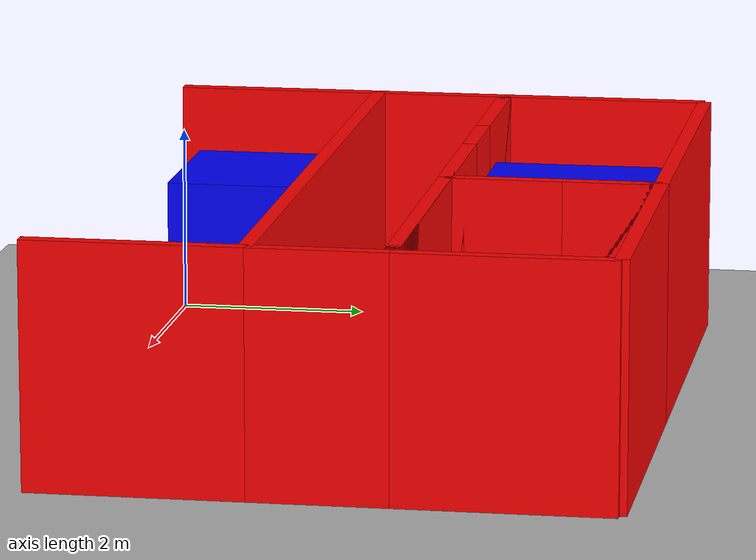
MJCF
<mujoco model="plan10178_like">
    <option gravity="0 0 -9.81"/>
    <worldbody>
    <geom type="plane" size="20 20 0.1" rgba="0.7 0.7 0.7 1"/>
    <geom type="box" pos="3.950 2.200 1.250" size="3.950 0.075 1.250" rgba="1 0 0 1" mass="0"/>
    <geom type="box" pos="0.000 1.100 1.250" size="0.075 1.100 1.250" rgba="1 0 0 1" mass="0"/>
    <geom type="box" pos="7.900 1.100 1.250" size="0.075 1.100 1.250" rgba="1 0 0 1" mass="0"/>
    <geom type="box" pos="3.950 3.600 1.250" size="3.950 0.075 1.250" rgba="1 0 0 1" mass="0"/>
    <geom type="box" pos="0.000 2.900 1.250" size="0.075 0.700 1.250" rgba="1 0 0 1" mass="0"/>
    <geom type="box" pos="7.900 2.900 1.250" size="0.075 0.700 1.250" rgba="1 0 0 1" mass="0"/>
    <geom type="box" pos="0.850 3.600 1.250" size="0.850 0.075 1.250" rgba="1 0 0 1" mass="0"/>
    <geom type="box" pos="3.550 3.600 1.250" size="0.850 0.075 1.250" rgba="1 0 0 1" mass="0"/>
    <geom type="box" pos="2.200 5.800 1.250" size="2.200 0.075 1.250" rgba="1 0 0 1" mass="0"/>
    <geom type="box" pos="0.000 4.700 1.250" size="0.075 1.100 1.250" rgba="1 0 0 1" mass="0"/>
    <geom type="box" pos="4.400 4.700 1.250" size="0.075 1.100 1.250" rgba="1 0 0 1" mass="0"/>
    <geom type="box" pos="6.150 3.600 1.250" size="1.750 0.075 1.250" rgba="1 0 0 1" mass="0"/>
    <geom type="box" pos="6.150 5.800 1.250" size="1.750 0.075 1.250" rgba="1 0 0 1" mass="0"/>
    <geom type="box" pos="4.400 3.700 1.250" size="0.075 0.100 1.250" rgba="1 0 0 1" mass="0"/>
    <geom type="box" pos="4.400 5.300 1.250" size="0.075 0.500 1.250" rgba="1 0 0 1" mass="0"/>
    <geom type="box" pos="7.900 4.700 1.250" size="0.075 1.100 1.250" rgba="1 0 0 1" mass="0"/>
    <geom name="sofa" type="box" pos="1.000 1.100 0.900" size="0.900 0.900 0.900" rgba="0 0 1 1" mass="0"/>
    <geom name="tv" type="box" pos="6.900 1.100 0.500" size="0.500 0.500 0.500" rgba="0 0 1 1" mass="0"/>
    <geom name="dining" type="box" pos="3.950 2.900 0.600" size="0.600 0.600 0.600" rgba="0 0 1 1" mass="0"/>
    <geom name="counter" type="box" pos="7.000 3.100 0.800" size="0.800 0.800 0.800" rgba="0 0 1 1" mass="0"/>
    <geom name="fridge" type="box" pos="5.800 3.100 0.400" size="0.400 0.400 0.400" rgba="0 0 1 1" mass="0"/>
    <geom name="bed" type="box" pos="2.200 4.600 1.000" size="1.000 1.000 1.000" rgba="0 0 1 1" mass="0"/>
    <geom name="closet" type="box" pos="3.900 4.600 0.500" size="0.500 0.500 0.500" rgba="0 0 1 1" mass="0"/>
    <geom name="bathtub" type="box" pos="5.200 4.600 0.700" size="0.700 0.700 0.700" rgba="0 0 1 1" mass="0"/>
    <geom name="sink" type="box" pos="6.800 4.600 0.350" size="0.350 0.350 0.350" rgba="0 0 1 1" mass="0"/>
    <geom name="toilet" type="box" pos="6.800 3.900 0.350" size="0.350 0.350 0.350" rgba="0 0 1 1" mass="0"/>
    </worldbody>
</mujoco>
